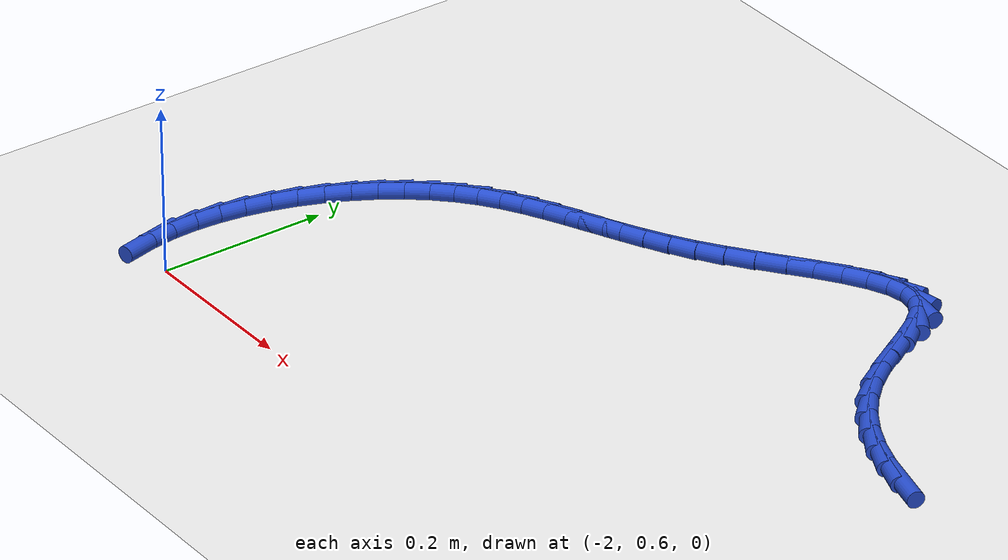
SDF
<sdf version="1.6">
 <world name="default">
  <model name="ground_plane">
   <static>1</static>
   <link name="link">
    <collision name="collision">
     <geometry><plane><normal>0 0 1</normal><size>100 100</size></plane></geometry>
     <surface><friction><ode><mu>100</mu><mu2>50</mu2></ode></friction></surface>
    </collision>
    <visual name="visual">
     <cast_shadows>0</cast_shadows>
     <geometry><plane><normal>0 0 1</normal><size>100 100</size></plane></geometry>
     <material>
      <script><uri>file://media/materials/scripts/gazebo.material</uri><name>Gazebo/WhiteGlow</name></script>
     </material>
    </visual>
   </link>
  </model>
  <model name="line">
   <link name="link_67">
    <pose>-1.1933990840825808 0.9680606655214781 0.01 0 1.57 -0.2658983981430656</pose>
    <collision name="collision">
     <geometry><cylinder><radius>0.01</radius><length>0.08</length></cylinder></geometry>
    </collision>
    <visual name="visual">
     <material>
      <script><name>Gazebo/Blue</name><uri>file://media/materials/scripts/gazebo.material</uri></script>
     </material>
     <geometry><cylinder><radius>0.01</radius><length>0.08</length></cylinder></geometry>
    </visual>
   </link>
   <link name="link_68">
    <pose>-1.224347609744877 0.9764894145873395 0.01 0 1.57 -0.36384573095993034</pose>
    <collision name="collision">
     <geometry><cylinder><radius>0.01</radius><length>0.08</length></cylinder></geometry>
    </collision>
    <visual name="visual">
     <material>
      <script><name>Gazebo/Blue</name><uri>file://media/materials/scripts/gazebo.material</uri></script>
     </material>
     <geometry><cylinder><radius>0.01</radius><length>0.08</length></cylinder></geometry>
    </visual>
   </link>
   <link name="link_69">
    <pose>-1.25422220478728 0.987865655265674 0.01 0 1.57 -0.4675038874920149</pose>
    <collision name="collision">
     <geometry><cylinder><radius>0.01</radius><length>0.08</length></cylinder></geometry>
    </collision>
    <visual name="visual">
     <material>
      <script><name>Gazebo/Blue</name><uri>file://media/materials/scripts/gazebo.material</uri></script>
     </material>
     <geometry><cylinder><radius>0.01</radius><length>0.08</length></cylinder></geometry>
    </visual>
   </link>
   <link name="link_70">
    <pose>-1.2826599167863029 1.00222185643802 0.01 0 1.57 -0.5777992739790774</pose>
    <collision name="collision">
     <geometry><cylinder><radius>0.01</radius><length>0.08</length></cylinder></geometry>
    </collision>
    <visual name="visual">
     <material>
      <script><name>Gazebo/Blue</name><uri>file://media/materials/scripts/gazebo.material</uri></script>
     </material>
     <geometry><cylinder><radius>0.01</radius><length>0.08</length></cylinder></geometry>
    </visual>
   </link>
   <link name="link_71">
    <pose>-1.309297793318456 1.0195904869859151 0.01 0 1.57 -0.6951630327022386</pose>
    <collision name="collision">
     <geometry><cylinder><radius>0.01</radius><length>0.08</length></cylinder></geometry>
    </collision>
    <visual name="visual">
     <material>
      <script><name>Gazebo/Blue</name><uri>file://media/materials/scripts/gazebo.material</uri></script>
     </material>
     <geometry><cylinder><radius>0.01</radius><length>0.08</length></cylinder></geometry>
    </visual>
   </link>
   <link name="link_72">
    <pose>-1.3337728819602523 1.0400040157908967 0.01 0 1.57 -0.8193098790180797</pose>
    <collision name="collision">
     <geometry><cylinder><radius>0.01</radius><length>0.08</length></cylinder></geometry>
    </collision>
    <visual name="visual">
     <material>
      <script><name>Gazebo/Blue</name><uri>file://media/materials/scripts/gazebo.material</uri></script>
     </material>
     <geometry><cylinder><radius>0.01</radius><length>0.08</length></cylinder></geometry>
    </visual>
   </link>
   <link name="link_73">
    <pose>-1.3557222302882033 1.0634949117345023 0.01 0 1.57 -0.9457112607219161</pose>
    <collision name="collision">
     <geometry><cylinder><radius>0.01</radius><length>0.08</length></cylinder></geometry>
    </collision>
    <visual name="visual">
     <material>
      <script><name>Gazebo/Blue</name><uri>file://media/materials/scripts/gazebo.material</uri></script>
     </material>
     <geometry><cylinder><radius>0.01</radius><length>0.08</length></cylinder></geometry>
    </visual>
   </link>
   <link name="link_74">
    <pose>-1.3748445513800072 1.0899942957774487 0.01 0 1.57 -1.033261000163913</pose>
    <collision name="collision">
     <geometry><cylinder><radius>0.01</radius><length>0.08</length></cylinder></geometry>
    </collision>
    <visual name="visual">
     <material>
      <script><name>Gazebo/Blue</name><uri>file://media/materials/scripts/gazebo.material</uri></script>
     </material>
     <geometry><cylinder><radius>0.01</radius><length>0.08</length></cylinder></geometry>
    </visual>
   </link>
   <link name="link_75">
    <pose>-1.3916235949896638 1.1181430725782582 0.01 0 1.57 -1.0594170667726501</pose>
    <collision name="collision">
     <geometry><cylinder><radius>0.01</radius><length>0.08</length></cylinder></geometry>
    </collision>
    <visual name="visual">
     <material>
      <script><name>Gazebo/Blue</name><uri>file://media/materials/scripts/gazebo.material</uri></script>
     </material>
     <geometry><cylinder><radius>0.01</radius><length>0.08</length></cylinder></geometry>
    </visual>
   </link>
   <link name="link_76">
    <pose>-1.4070839581482788 1.1456932584224853 0.01 0 1.57 -1.0195656183295387</pose>
    <collision name="collision">
     <geometry><cylinder><radius>0.01</radius><length>0.08</length></cylinder></geometry>
    </collision>
    <visual name="visual">
     <material>
      <script><name>Gazebo/Blue</name><uri>file://media/materials/scripts/gazebo.material</uri></script>
     </material>
     <geometry><cylinder><radius>0.01</radius><length>0.08</length></cylinder></geometry>
    </visual>
   </link>
   <link name="link_77">
    <pose>-1.4222609301342726 1.1703792967711197 0.01 0 1.57 -0.8872689962704</pose>
    <collision name="collision">
     <geometry><cylinder><radius>0.01</radius><length>0.08</length></cylinder></geometry>
    </collision>
    <visual name="visual">
     <material>
      <script><name>Gazebo/Blue</name><uri>file://media/materials/scripts/gazebo.material</uri></script>
     </material>
     <geometry><cylinder><radius>0.01</radius><length>0.08</length></cylinder></geometry>
    </visual>
   </link>
   <link name="link_78">
    <pose>-1.438189800226064 1.1899356310851494 0.01 0 1.57 -0.6018734467241662</pose>
    <collision name="collision">
     <geometry><cylinder><radius>0.01</radius><length>0.08</length></cylinder></geometry>
    </collision>
    <visual name="visual">
     <material>
      <script><name>Gazebo/Blue</name><uri>file://media/materials/scripts/gazebo.material</uri></script>
     </material>
     <geometry><cylinder><radius>0.01</radius><length>0.08</length></cylinder></geometry>
    </visual>
   </link>
   <link name="link_79">
    <pose>-1.4559034766123602 1.202102989626902 0.01 0 1.57 -0.17621898919961332</pose>
    <collision name="collision">
     <geometry><cylinder><radius>0.01</radius><length>0.08</length></cylinder></geometry>
    </collision>
    <visual name="visual">
     <material>
      <script><name>Gazebo/Blue</name><uri>file://media/materials/scripts/gazebo.material</uri></script>
     </material>
     <geometry><cylinder><radius>0.01</radius><length>0.08</length></cylinder></geometry>
    </visual>
   </link>
   <link name="link_80">
    <pose>-1.4760313824484976 1.2056870850080177 0.01 0 1.57 0.17461375222142847</pose>
    <collision name="collision">
     <geometry><cylinder><radius>0.01</radius><length>0.08</length></cylinder></geometry>
    </collision>
    <visual name="visual">
     <material>
      <script><name>Gazebo/Blue</name><uri>file://media/materials/scripts/gazebo.material</uri></script>
     </material>
     <geometry><cylinder><radius>0.01</radius><length>0.08</length></cylinder></geometry>
    </visual>
   </link>
   <link name="link_81">
    <pose>-1.4983480050722555 1.201750202426618 0.01 0 1.57 0.39608641551155577</pose>
    <collision name="collision">
     <geometry><cylinder><radius>0.01</radius><length>0.08</length></cylinder></geometry>
    </collision>
    <visual name="visual">
     <material>
      <script><name>Gazebo/Blue</name><uri>file://media/materials/scripts/gazebo.material</uri></script>
     </material>
     <geometry><cylinder><radius>0.01</radius><length>0.08</length></cylinder></geometry>
    </visual>
   </link>
   <link name="link_82">
    <pose>-1.5225188623403985 1.1916422481379543 0.01 0 1.57 0.5264154233729937</pose>
    <collision name="collision">
     <geometry><cylinder><radius>0.01</radius><length>0.08</length></cylinder></geometry>
    </collision>
    <visual name="visual">
     <material>
      <script><name>Gazebo/Blue</name><uri>file://media/materials/scripts/gazebo.material</uri></script>
     </material>
     <geometry><cylinder><radius>0.01</radius><length>0.08</length></cylinder></geometry>
    </visual>
   </link>
   <link name="link_83">
    <pose>-1.5482094721096924 1.1767131283972783 0.01 0 1.57 0.6003446177998228</pose>
    <collision name="collision">
     <geometry><cylinder><radius>0.01</radius><length>0.08</length></cylinder></geometry>
    </collision>
    <visual name="visual">
     <material>
      <script><name>Gazebo/Blue</name><uri>file://media/materials/scripts/gazebo.material</uri></script>
     </material>
     <geometry><cylinder><radius>0.01</radius><length>0.08</length></cylinder></geometry>
    </visual>
   </link>
   <link name="link_84">
    <pose>-1.5750853522368993 1.1583127494598418 0.01 0 1.57 0.6371634788861235</pose>
    <collision name="collision">
     <geometry><cylinder><radius>0.01</radius><length>0.08</length></cylinder></geometry>
    </collision>
    <visual name="visual">
     <material>
      <script><name>Gazebo/Blue</name><uri>file://media/materials/scripts/gazebo.material</uri></script>
     </material>
     <geometry><cylinder><radius>0.01</radius><length>0.08</length></cylinder></geometry>
    </visual>
   </link>
   <link name="link_85">
    <pose>-1.6028120205787841 1.1377910175808963 0.01 0 1.57 0.6460105037181166</pose>
    <collision name="collision">
     <geometry><cylinder><radius>0.01</radius><length>0.08</length></cylinder></geometry>
    </collision>
    <visual name="visual">
     <material>
      <script><name>Gazebo/Blue</name><uri>file://media/materials/scripts/gazebo.material</uri></script>
     </material>
     <geometry><cylinder><radius>0.01</radius><length>0.08</length></cylinder></geometry>
    </visual>
   </link>
   <link name="link_86">
    <pose>-1.6310549949921136 1.1164978390156937 0.01 0 1.57 0.6297652062586684</pose>
    <collision name="collision">
     <geometry><cylinder><radius>0.01</radius><length>0.08</length></cylinder></geometry>
    </collision>
    <visual name="visual">
     <material>
      <script><name>Gazebo/Blue</name><uri>file://media/materials/scripts/gazebo.material</uri></script>
     </material>
     <geometry><cylinder><radius>0.01</radius><length>0.08</length></cylinder></geometry>
    </visual>
   </link>
   <link name="link_87">
    <pose>-1.6594797933336498 1.0957831200194859 0.01 0 1.57 0.5869575910273206</pose>
    <collision name="collision">
     <geometry><cylinder><radius>0.01</radius><length>0.08</length></cylinder></geometry>
    </collision>
    <visual name="visual">
     <material>
      <script><name>Gazebo/Blue</name><uri>file://media/materials/scripts/gazebo.material</uri></script>
     </material>
     <geometry><cylinder><radius>0.01</radius><length>0.08</length></cylinder></geometry>
    </visual>
   </link>
   <link name="link_88">
    <pose>-1.6877548230646549 1.0769757505987656 0.01 0 1.57 0.5302346717485008</pose>
    <collision name="collision">
     <geometry><cylinder><radius>0.01</radius><length>0.08</length></cylinder></geometry>
    </collision>
    <visual name="visual">
     <material>
      <script><name>Gazebo/Blue</name><uri>file://media/materials/scripts/gazebo.material</uri></script>
     </material>
     <geometry><cylinder><radius>0.01</radius><length>0.08</length></cylinder></geometry>
    </visual>
   </link>
   <link name="link_89">
    <pose>-1.7156565274529862 1.0606188705341595 0.01 0 1.57 0.48226973119185057</pose>
    <collision name="collision">
     <geometry><cylinder><radius>0.01</radius><length>0.08</length></cylinder></geometry>
    </collision>
    <visual name="visual">
     <material>
      <script><name>Gazebo/Blue</name><uri>file://media/materials/scripts/gazebo.material</uri></script>
     </material>
     <geometry><cylinder><radius>0.01</radius><length>0.08</length></cylinder></geometry>
    </visual>
   </link>
   <link name="link_90">
    <pose>-1.7430992553009563 1.0462526252448838 0.01 0 1.57 0.4470772835472551</pose>
    <collision name="collision">
     <geometry><cylinder><radius>0.01</radius><length>0.08</length></cylinder></geometry>
    </collision>
    <visual name="visual">
     <material>
      <script><name>Gazebo/Blue</name><uri>file://media/materials/scripts/gazebo.material</uri></script>
     </material>
     <geometry><cylinder><radius>0.01</radius><length>0.08</length></cylinder></geometry>
    </visual>
   </link>
   <link name="link_91">
    <pose>-1.7700063307728504 1.0333518818603025 0.01 0 1.57 0.42688643334504256</pose>
    <collision name="collision">
     <geometry><cylinder><radius>0.01</radius><length>0.08</length></cylinder></geometry>
    </collision>
    <visual name="visual">
     <material>
      <script><name>Gazebo/Blue</name><uri>file://media/materials/scripts/gazebo.material</uri></script>
     </material>
     <geometry><cylinder><radius>0.01</radius><length>0.08</length></cylinder></geometry>
    </visual>
   </link>
   <link name="link_92">
    <pose>-1.796301078032952 1.0213915075097788 0.01 0 1.57 0.42358616524334974</pose>
    <collision name="collision">
     <geometry><cylinder><radius>0.01</radius><length>0.08</length></cylinder></geometry>
    </collision>
    <visual name="visual">
     <material>
      <script><name>Gazebo/Blue</name><uri>file://media/materials/scripts/gazebo.material</uri></script>
     </material>
     <geometry><cylinder><radius>0.01</radius><length>0.08</length></cylinder></geometry>
    </visual>
   </link>
   <link name="link_93">
    <pose>-1.8219068212455471 1.0098463693226767 0.01 0 1.57 0.4387079776745789</pose>
    <collision name="collision">
     <geometry><cylinder><radius>0.01</radius><length>0.08</length></cylinder></geometry>
    </collision>
    <visual name="visual">
     <material>
      <script><name>Gazebo/Blue</name><uri>file://media/materials/scripts/gazebo.material</uri></script>
     </material>
     <geometry><cylinder><radius>0.01</radius><length>0.08</length></cylinder></geometry>
    </visual>
   </link>
   <link name="link_94">
    <pose>-1.8467468845749215 0.9981913344283597 0.01 0 1.57 0.4733083634244108</pose>
    <collision name="collision">
     <geometry><cylinder><radius>0.01</radius><length>0.08</length></cylinder></geometry>
    </collision>
    <visual name="visual">
     <material>
      <script><name>Gazebo/Blue</name><uri>file://media/materials/scripts/gazebo.material</uri></script>
     </material>
     <geometry><cylinder><radius>0.01</radius><length>0.08</length></cylinder></geometry>
    </visual>
   </link>
   <link name="link_95">
    <pose>-1.8707445921853587 0.985901269956192 0.01 0 1.57 0.527675604315942</pose>
    <collision name="collision">
     <geometry><cylinder><radius>0.01</radius><length>0.08</length></cylinder></geometry>
    </collision>
    <visual name="visual">
     <material>
      <script><name>Gazebo/Blue</name><uri>file://media/materials/scripts/gazebo.material</uri></script>
     </material>
     <geometry><cylinder><radius>0.01</radius><length>0.08</length></cylinder></geometry>
    </visual>
   </link>
   <link name="link_96">
    <pose>-1.8938232682411447 0.9724510430355368 0.01 0 1.57 0.6008555014774855</pose>
    <collision name="collision">
     <geometry><cylinder><radius>0.01</radius><length>0.08</length></cylinder></geometry>
    </collision>
    <visual name="visual">
     <material>
      <script><name>Gazebo/Blue</name><uri>file://media/materials/scripts/gazebo.material</uri></script>
     </material>
     <geometry><cylinder><radius>0.01</radius><length>0.08</length></cylinder></geometry>
    </visual>
   </link>
   <link name="link_97">
    <pose>-1.9159062369065638 0.9573155207957583 0.01 0 1.57 0.6901088124768162</pose>
    <collision name="collision">
     <geometry><cylinder><radius>0.01</radius><length>0.08</length></cylinder></geometry>
    </collision>
    <visual name="visual">
     <material>
      <script><name>Gazebo/Blue</name><uri>file://media/materials/scripts/gazebo.material</uri></script>
     </material>
     <geometry><cylinder><radius>0.01</radius><length>0.08</length></cylinder></geometry>
    </visual>
   </link>
   <link name="link_98">
    <pose>-1.9369166578612402 0.9399710179435644 0.01 0 1.57 0.7855267923550314</pose>
    <collision name="collision">
     <geometry><cylinder><radius>0.01</radius><length>0.08</length></cylinder></geometry>
    </collision>
    <visual name="visual">
     <material>
      <script><name>Gazebo/Blue</name><uri>file://media/materials/scripts/gazebo.material</uri></script>
     </material>
     <geometry><cylinder><radius>0.01</radius><length>0.08</length></cylinder></geometry>
    </visual>
   </link>
   <link name="link_99">
    <pose>-1.9567506376751622 0.9201319350249109 0.01 0 1.57 0.8743338259579501</pose>
    <collision name="collision">
     <geometry><cylinder><radius>0.01</radius><length>0.08</length></cylinder></geometry>
    </collision>
    <visual name="visual">
     <material>
      <script><name>Gazebo/Blue</name><uri>file://media/materials/scripts/gazebo.material</uri></script>
     </material>
     <geometry><cylinder><radius>0.01</radius><length>0.08</length></cylinder></geometry>
    </visual>
   </link>
   <link name="link_100">
    <pose>-1.9752473741743855 0.8980135083950743 0.01 0 1.57 0.9570705654507099</pose>
    <collision name="collision">
     <geometry><cylinder><radius>0.01</radius><length>0.08</length></cylinder></geometry>
    </collision>
    <visual name="visual">
     <material>
      <script><name>Gazebo/Blue</name><uri>file://media/materials/scripts/gazebo.material</uri></script>
     </material>
     <geometry><cylinder><radius>0.01</radius><length>0.08</length></cylinder></geometry>
    </visual>
   </link>
   <link name="link_101">
    <pose>-1.9922388728959817 0.8738942714640012 0.01 0 1.57 1.0357044561989466</pose>
    <collision name="collision">
     <geometry><cylinder><radius>0.01</radius><length>0.08</length></cylinder></geometry>
    </collision>
    <visual name="visual">
     <material>
      <script><name>Gazebo/Blue</name><uri>file://media/materials/scripts/gazebo.material</uri></script>
     </material>
     <geometry><cylinder><radius>0.01</radius><length>0.08</length></cylinder></geometry>
    </visual>
   </link>
   <link name="link_102">
    <pose>-2.00755713937702 0.8480527576416379 0.01 0 1.57 1.1120155368420783</pose>
    <collision name="collision">
     <geometry><cylinder><radius>0.01</radius><length>0.08</length></cylinder></geometry>
    </collision>
    <visual name="visual">
     <material>
      <script><name>Gazebo/Blue</name><uri>file://media/materials/scripts/gazebo.material</uri></script>
     </material>
     <geometry><cylinder><radius>0.01</radius><length>0.08</length></cylinder></geometry>
    </visual>
   </link>
   <link name="link_103">
    <pose>-2.0210341791545705 0.8207675003379322 0.01 0 1.57 1.1876374728283308</pose>
    <collision name="collision">
     <geometry><cylinder><radius>0.01</radius><length>0.08</length></cylinder></geometry>
    </collision>
    <visual name="visual">
     <material>
      <script><name>Gazebo/Blue</name><uri>file://media/materials/scripts/gazebo.material</uri></script>
     </material>
     <geometry><cylinder><radius>0.01</radius><length>0.08</length></cylinder></geometry>
    </visual>
   </link>
   <link name="link_104">
    <pose>-2.0325019977657033 0.7923170329628307 0.01 0 1.57 1.264104289199796</pose>
    <collision name="collision">
     <geometry><cylinder><radius>0.01</radius><length>0.08</length></cylinder></geometry>
    </collision>
    <visual name="visual">
     <material>
      <script><name>Gazebo/Blue</name><uri>file://media/materials/scripts/gazebo.material</uri></script>
     </material>
     <geometry><cylinder><radius>0.01</radius><length>0.08</length></cylinder></geometry>
    </visual>
   </link>
   <link name="link_105">
    <pose>-2.0417926007474887 0.7629798889262799 0.01 0 1.57 1.342889900296417</pose>
    <collision name="collision">
     <geometry><cylinder><radius>0.01</radius><length>0.08</length></cylinder></geometry>
    </collision>
    <visual name="visual">
     <material>
      <script><name>Gazebo/Blue</name><uri>file://media/materials/scripts/gazebo.material</uri></script>
     </material>
     <geometry><cylinder><radius>0.01</radius><length>0.08</length></cylinder></geometry>
    </visual>
   </link>
   <link name="link_106">
    <pose>-2.048737993636996 0.7330346016382266 0.01 0 1.57 1.4254308378638534</pose>
    <collision name="collision">
     <geometry><cylinder><radius>0.01</radius><length>0.08</length></cylinder></geometry>
    </collision>
    <visual name="visual">
     <material>
      <script><name>Gazebo/Blue</name><uri>file://media/materials/scripts/gazebo.material</uri></script>
     </material>
     <geometry><cylinder><radius>0.01</radius><length>0.08</length></cylinder></geometry>
    </visual>
   </link>
   <link name="link_107">
    <pose>-2.053170181971296 0.7027597045086177 0.01 0 1.57 1.5131214301038198</pose>
    <collision name="collision">
     <geometry><cylinder><radius>0.01</radius><length>0.08</length></cylinder></geometry>
    </collision>
    <visual name="visual">
     <material>
      <script><name>Gazebo/Blue</name><uri>file://media/materials/scripts/gazebo.material</uri></script>
     </material>
     <geometry><cylinder><radius>0.01</radius><length>0.08</length></cylinder></geometry>
    </visual>
   </link>
   <link name="link_108">
    <pose>-2.054921171287458 0.6724337309474006 0.01 0 1.57 -1.5343255191944782</pose>
    <collision name="collision">
     <geometry><cylinder><radius>0.01</radius><length>0.08</length></cylinder></geometry>
    </collision>
    <visual name="visual">
     <material>
      <script><name>Gazebo/Blue</name><uri>file://media/materials/scripts/gazebo.material</uri></script>
     </material>
     <geometry><cylinder><radius>0.01</radius><length>0.08</length></cylinder></geometry>
    </visual>
   </link>
   <link name="link_109">
    <pose>-2.053822967122553 0.6423352143645217 0.01 0 1.57 -1.4326139668707996</pose>
    <collision name="collision">
     <geometry><cylinder><radius>0.01</radius><length>0.08</length></cylinder></geometry>
    </collision>
    <visual name="visual">
     <material>
      <script><name>Gazebo/Blue</name><uri>file://media/materials/scripts/gazebo.material</uri></script>
     </material>
     <geometry><cylinder><radius>0.01</radius><length>0.08</length></cylinder></geometry>
    </visual>
   </link>
   <link name="link_110">
    <pose>-2.0497075750136498 0.6127426881699273 0.01 0 1.57 -1.326732466322709</pose>
    <collision name="collision">
     <geometry><cylinder><radius>0.01</radius><length>0.08</length></cylinder></geometry>
    </collision>
    <visual name="visual">
     <material>
      <script><name>Gazebo/Blue</name><uri>file://media/materials/scripts/gazebo.material</uri></script>
     </material>
     <geometry><cylinder><radius>0.01</radius><length>0.08</length></cylinder></geometry>
    </visual>
   </link>
  </model>
 </world>
</sdf>
